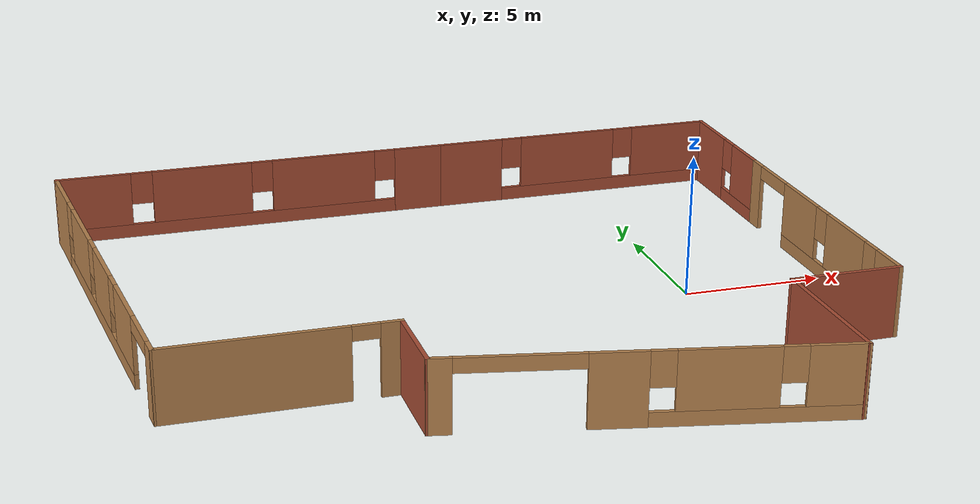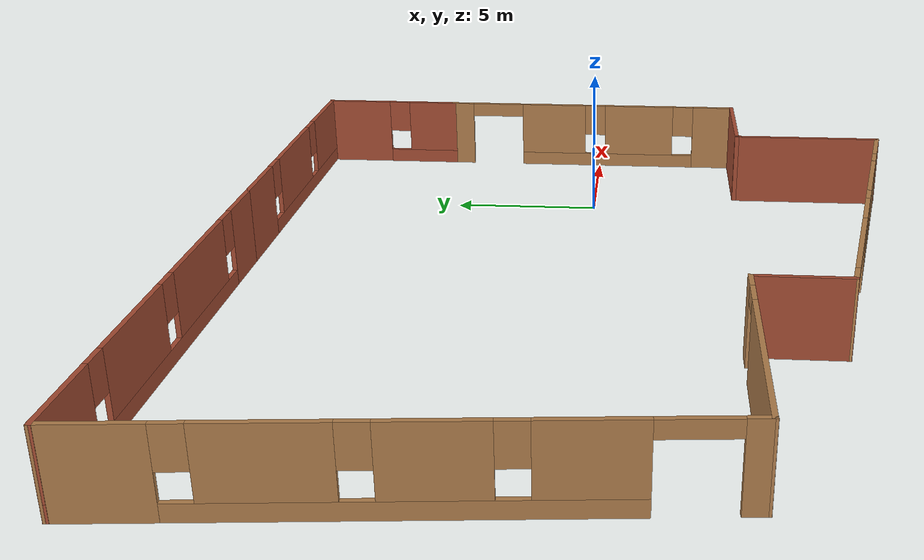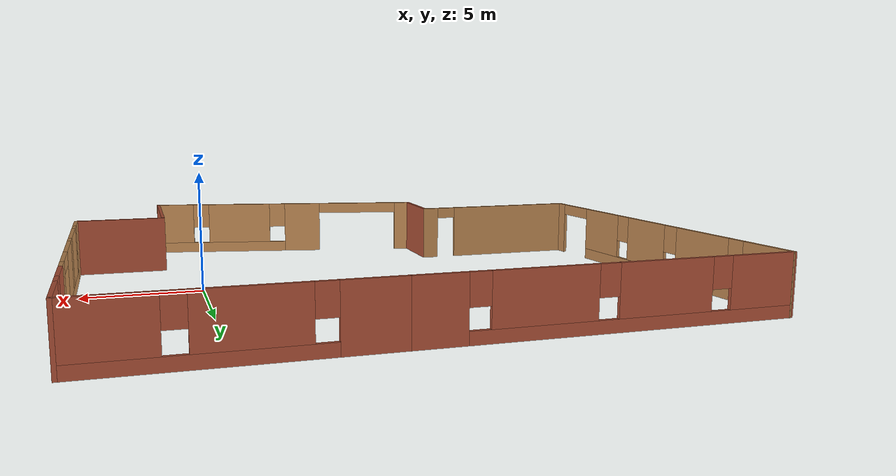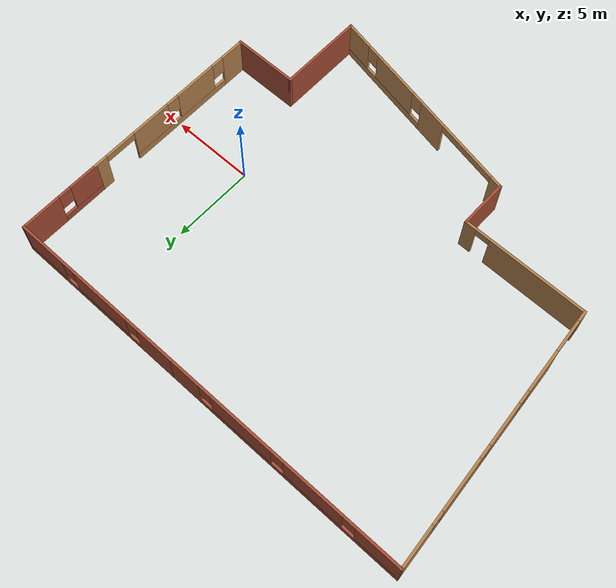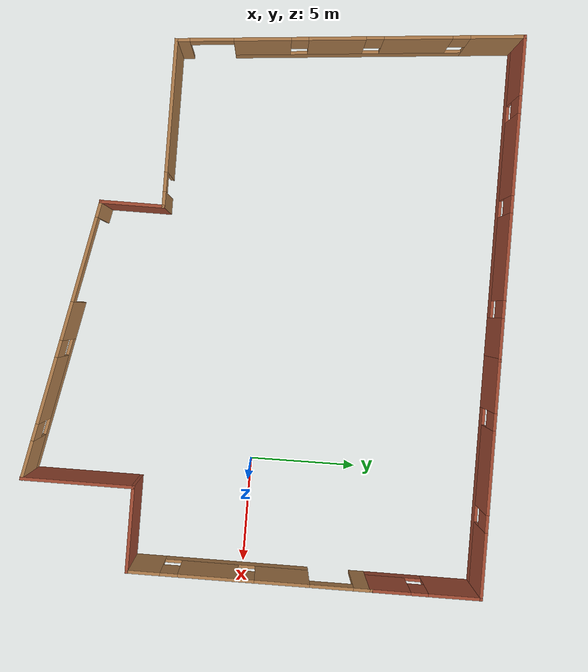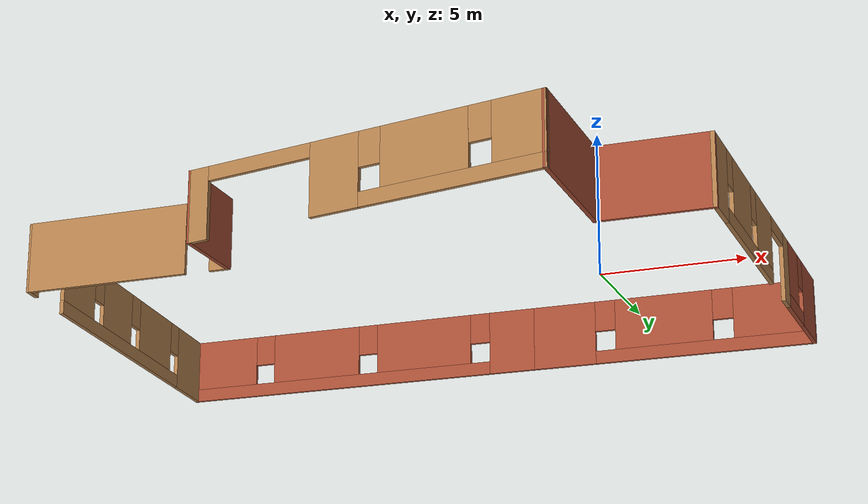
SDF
<?xml version='1.0'?>
<sdf version='1.6'>
  <model name='Carpenter'>
    <pose frame=''>-7.67914 0.329418 0 0 -0 0</pose>
    <link name='Wall_197'>
      <collision name='Wall_197_Collision'>
        <geometry>
          <box>
            <size>5.25 0.15 2.5</size>
          </box>
        </geometry>
        <pose frame=''>0 0 1.25 0 -0 0</pose>
      </collision>
      <visual name='Wall_197_Visual'>
        <pose frame=''>0 0 1.25 0 -0 0</pose>
        <geometry>
          <box>
            <size>5.25 0.15 2.5</size>
          </box>
        </geometry>
        <material>
          <script>
            <uri>file://media/materials/scripts/gazebo.material</uri>
            <name>Gazebo/Bricks</name>
          </script>
          <ambient>0 0 1 1</ambient>
        </material>
        <meta>
          <layer>0</layer>
        </meta>
      </visual>
      <pose frame=''>9.00312 -8.09628 0 0 -0 1.5708</pose>
    </link>
    <link name='Wall_198'>
      <collision name='Wall_198_Collision'>
        <geometry>
          <box>
            <size>4 0.15 2.5</size>
          </box>
        </geometry>
        <pose frame=''>0 0 1.25 0 -0 0</pose>
      </collision>
      <visual name='Wall_198_Visual'>
        <pose frame=''>0 0 1.25 0 -0 0</pose>
        <geometry>
          <box>
            <size>4 0.15 2.5</size>
          </box>
        </geometry>
        <material>
          <script>
            <uri>file://media/materials/scripts/gazebo.material</uri>
            <name>Gazebo/Bricks</name>
          </script>
          <ambient>0 0 1 1</ambient>
        </material>
        <meta>
          <layer>0</layer>
        </meta>
      </visual>
      <pose frame=''>10.9281 -5.54628 0 0 -0 0</pose>
    </link>
    <link name='Wall_199'>
      <pose frame=''>12.8531 0.039149 0 0 -0 1.57079</pose>
      <visual name='Wall_199_Visual_0'>
        <pose frame=''>-4.86276 0 1.25 0 -0 0</pose>
        <geometry>
          <box>
            <size>1.59584 0.15 2.5</size>
          </box>
        </geometry>
        <material>
          <script>
            <uri>file://media/materials/scripts/gazebo.material</uri>
            <name>Gazebo/Wood</name>
          </script>
          <ambient>0.333333 1 0.498039 1</ambient>
        </material>
        <meta>
          <layer>0</layer>
        </meta>
      </visual>
      <collision name='Wall_199_Collision_0'>
        <geometry>
          <box>
            <size>1.59584 0.15 2.5</size>
          </box>
        </geometry>
        <pose frame=''>-4.86276 0 1.25 0 -0 0</pose>
      </collision>
      <visual name='Wall_199_Visual_1'>
        <pose frame=''>5.22009 0 1.25 0 -0 0</pose>
        <geometry>
          <box>
            <size>0.881164 0.15 2.5</size>
          </box>
        </geometry>
        <material>
          <script>
            <uri>file://media/materials/scripts/gazebo.material</uri>
            <name>Gazebo/Wood</name>
          </script>
          <ambient>0.333333 1 0.498039 1</ambient>
        </material>
        <meta>
          <layer>0</layer>
        </meta>
      </visual>
      <collision name='Wall_199_Collision_1'>
        <geometry>
          <box>
            <size>0.881164 0.15 2.5</size>
          </box>
        </geometry>
        <pose frame=''>5.22009 0 1.25 0 -0 0</pose>
      </collision>
      <visual name='Wall_199_Visual_2'>
        <pose frame=''>-0.642663 0 0.25 0 -0 0</pose>
        <geometry>
          <box>
            <size>6.84435 0.15 0.5</size>
          </box>
        </geometry>
        <material>
          <script>
            <uri>file://media/materials/scripts/gazebo.material</uri>
            <name>Gazebo/Wood</name>
          </script>
          <ambient>0.333333 1 0.498039 1</ambient>
        </material>
        <meta>
          <layer>0</layer>
        </meta>
      </visual>
      <collision name='Wall_199_Collision_2'>
        <geometry>
          <box>
            <size>6.84435 0.15 0.5</size>
          </box>
        </geometry>
        <pose frame=''>-0.642663 0 0.25 0 -0 0</pose>
      </collision>
      <visual name='Wall_199_Visual_3'>
        <pose frame=''>-1.91112 0 1.5 0 -0 0</pose>
        <geometry>
          <box>
            <size>2.70743 0.15 2</size>
          </box>
        </geometry>
        <material>
          <script>
            <uri>file://media/materials/scripts/gazebo.material</uri>
            <name>Gazebo/Wood</name>
          </script>
          <ambient>0.333333 1 0.498039 1</ambient>
        </material>
        <meta>
          <layer>0</layer>
        </meta>
      </visual>
      <collision name='Wall_199_Collision_3'>
        <geometry>
          <box>
            <size>2.70743 0.15 2</size>
          </box>
        </geometry>
        <pose frame=''>-1.91112 0 1.5 0 -0 0</pose>
      </collision>
      <visual name='Wall_199_Visual_4'>
        <pose frame=''>1.51105 0 1.5 0 -0 0</pose>
        <geometry>
          <box>
            <size>2.53692 0.15 2</size>
          </box>
        </geometry>
        <material>
          <script>
            <uri>file://media/materials/scripts/gazebo.material</uri>
            <name>Gazebo/Wood</name>
          </script>
          <ambient>0.333333 1 0.498039 1</ambient>
        </material>
        <meta>
          <layer>0</layer>
        </meta>
      </visual>
      <collision name='Wall_199_Collision_4'>
        <geometry>
          <box>
            <size>2.53692 0.15 2</size>
          </box>
        </geometry>
        <pose frame=''>1.51105 0 1.5 0 -0 0</pose>
      </collision>
      <visual name='Wall_199_Visual_5'>
        <pose frame=''>-3.66484 0 1.9 0 -0 0</pose>
        <geometry>
          <box>
            <size>0.8 0.15 1.2</size>
          </box>
        </geometry>
        <material>
          <script>
            <uri>file://media/materials/scripts/gazebo.material</uri>
            <name>Gazebo/Wood</name>
          </script>
          <ambient>0.333333 1 0.498039 1</ambient>
        </material>
        <meta>
          <layer>0</layer>
        </meta>
      </visual>
      <collision name='Wall_199_Collision_5'>
        <geometry>
          <box>
            <size>0.8 0.15 1.2</size>
          </box>
        </geometry>
        <pose frame=''>-3.66484 0 1.9 0 -0 0</pose>
      </collision>
      <visual name='Wall_199_Visual_6'>
        <pose frame=''>-0.157404 0 1.9 0 -0 0</pose>
        <geometry>
          <box>
            <size>0.8 0.15 1.2</size>
          </box>
        </geometry>
        <material>
          <script>
            <uri>file://media/materials/scripts/gazebo.material</uri>
            <name>Gazebo/Wood</name>
          </script>
          <ambient>0.333333 1 0.498039 1</ambient>
        </material>
        <meta>
          <layer>0</layer>
        </meta>
      </visual>
      <collision name='Wall_199_Collision_6'>
        <geometry>
          <box>
            <size>0.8 0.15 1.2</size>
          </box>
        </geometry>
        <pose frame=''>-0.157404 0 1.9 0 -0 0</pose>
      </collision>
      <visual name='Wall_199_Visual_7'>
        <pose frame=''>3.77951 0 2.25 0 -0 0</pose>
        <geometry>
          <box>
            <size>2 0.15 0.5</size>
          </box>
        </geometry>
        <material>
          <script>
            <uri>file://media/materials/scripts/gazebo.material</uri>
            <name>Gazebo/Wood</name>
          </script>
          <ambient>0.333333 1 0.498039 1</ambient>
        </material>
        <meta>
          <layer>0</layer>
        </meta>
      </visual>
      <collision name='Wall_199_Collision_7'>
        <geometry>
          <box>
            <size>2 0.15 0.5</size>
          </box>
        </geometry>
        <pose frame=''>3.77951 0 2.25 0 -0 0</pose>
      </collision>
    </link>
    <link name='Wall_202'>
      <pose frame=''>-5.45743 10.6537 0 0 0 -3.14158</pose>
      <visual name='Wall_202_Visual_0'>
        <pose frame=''>-6.4647 0 1.25 0 -0 0</pose>
        <geometry>
          <box>
            <size>1.99945 0.15 2.5</size>
          </box>
        </geometry>
        <material>
          <script>
            <uri>file://media/materials/scripts/gazebo.material</uri>
            <name>Gazebo/Bricks</name>
          </script>
          <ambient>0 0 1 1</ambient>
        </material>
        <meta>
          <layer>0</layer>
        </meta>
      </visual>
      <collision name='Wall_202_Collision_0'>
        <geometry>
          <box>
            <size>1.99945 0.15 2.5</size>
          </box>
        </geometry>
        <pose frame=''>-6.4647 0 1.25 0 -0 0</pose>
      </collision>
      <visual name='Wall_202_Visual_1'>
        <pose frame=''>0.999728 0 0.25 0 -0 0</pose>
        <geometry>
          <box>
            <size>12.9294 0.15 0.5</size>
          </box>
        </geometry>
        <material>
          <script>
            <uri>file://media/materials/scripts/gazebo.material</uri>
            <name>Gazebo/Bricks</name>
          </script>
          <ambient>0 0 1 1</ambient>
        </material>
        <meta>
          <layer>0</layer>
        </meta>
      </visual>
      <collision name='Wall_202_Collision_1'>
        <geometry>
          <box>
            <size>12.9294 0.15 0.5</size>
          </box>
        </geometry>
        <pose frame=''>0.999728 0 0.25 0 -0 0</pose>
      </collision>
      <visual name='Wall_202_Visual_2'>
        <pose frame=''>-2.66446 0 1.5 0 -0 0</pose>
        <geometry>
          <box>
            <size>4.00102 0.15 2</size>
          </box>
        </geometry>
        <material>
          <script>
            <uri>file://media/materials/scripts/gazebo.material</uri>
            <name>Gazebo/Bricks</name>
          </script>
          <ambient>0 0 1 1</ambient>
        </material>
        <meta>
          <layer>0</layer>
        </meta>
      </visual>
      <collision name='Wall_202_Collision_2'>
        <geometry>
          <box>
            <size>4.00102 0.15 2</size>
          </box>
        </geometry>
        <pose frame=''>-2.66446 0 1.5 0 -0 0</pose>
      </collision>
      <visual name='Wall_202_Visual_3'>
        <pose frame=''>2.01209 0 1.5 0 -0 0</pose>
        <geometry>
          <box>
            <size>3.75208 0.15 2</size>
          </box>
        </geometry>
        <material>
          <script>
            <uri>file://media/materials/scripts/gazebo.material</uri>
            <name>Gazebo/Bricks</name>
          </script>
          <ambient>0 0 1 1</ambient>
        </material>
        <meta>
          <layer>0</layer>
        </meta>
      </visual>
      <collision name='Wall_202_Collision_3'>
        <geometry>
          <box>
            <size>3.75208 0.15 2</size>
          </box>
        </geometry>
        <pose frame=''>2.01209 0 1.5 0 -0 0</pose>
      </collision>
      <visual name='Wall_202_Visual_4'>
        <pose frame=''>6.07628 0 1.5 0 -0 0</pose>
        <geometry>
          <box>
            <size>2.7763 0.15 2</size>
          </box>
        </geometry>
        <material>
          <script>
            <uri>file://media/materials/scripts/gazebo.material</uri>
            <name>Gazebo/Bricks</name>
          </script>
          <ambient>0 0 1 1</ambient>
        </material>
        <meta>
          <layer>0</layer>
        </meta>
      </visual>
      <collision name='Wall_202_Collision_4'>
        <geometry>
          <box>
            <size>2.7763 0.15 2</size>
          </box>
        </geometry>
        <pose frame=''>6.07628 0 1.5 0 -0 0</pose>
      </collision>
      <visual name='Wall_202_Visual_5'>
        <pose frame=''>-5.06497 0 1.9 0 -0 0</pose>
        <geometry>
          <box>
            <size>0.8 0.15 1.2</size>
          </box>
        </geometry>
        <material>
          <script>
            <uri>file://media/materials/scripts/gazebo.material</uri>
            <name>Gazebo/Bricks</name>
          </script>
          <ambient>0 0 1 1</ambient>
        </material>
        <meta>
          <layer>0</layer>
        </meta>
      </visual>
      <collision name='Wall_202_Collision_5'>
        <geometry>
          <box>
            <size>0.8 0.15 1.2</size>
          </box>
        </geometry>
        <pose frame=''>-5.06497 0 1.9 0 -0 0</pose>
      </collision>
      <visual name='Wall_202_Visual_6'>
        <pose frame=''>-0.263949 0 1.9 0 -0 0</pose>
        <geometry>
          <box>
            <size>0.8 0.15 1.2</size>
          </box>
        </geometry>
        <material>
          <script>
            <uri>file://media/materials/scripts/gazebo.material</uri>
            <name>Gazebo/Bricks</name>
          </script>
          <ambient>0 0 1 1</ambient>
        </material>
        <meta>
          <layer>0</layer>
        </meta>
      </visual>
      <collision name='Wall_202_Collision_6'>
        <geometry>
          <box>
            <size>0.8 0.15 1.2</size>
          </box>
        </geometry>
        <pose frame=''>-0.263949 0 1.9 0 -0 0</pose>
      </collision>
      <visual name='Wall_202_Visual_7'>
        <pose frame=''>4.28813 0 1.9 0 -0 0</pose>
        <geometry>
          <box>
            <size>0.8 0.15 1.2</size>
          </box>
        </geometry>
        <material>
          <script>
            <uri>file://media/materials/scripts/gazebo.material</uri>
            <name>Gazebo/Bricks</name>
          </script>
          <ambient>0 0 1 1</ambient>
        </material>
        <meta>
          <layer>0</layer>
        </meta>
      </visual>
      <collision name='Wall_202_Collision_7'>
        <geometry>
          <box>
            <size>0.8 0.15 1.2</size>
          </box>
        </geometry>
        <pose frame=''>4.28813 0 1.9 0 -0 0</pose>
      </collision>
    </link>
    <link name='Wall_209'>
      <pose frame=''>-7.65272 -5.16725 0 0 -0 4.4e-05</pose>
      <visual name='Wall_209_Visual_0'>
        <pose frame=''>-0.826191 0 1.25 0 -0 0</pose>
        <geometry>
          <box>
            <size>6.09762 0.15 2.5</size>
          </box>
        </geometry>
        <material>
          <script>
            <uri>file://media/materials/scripts/gazebo.material</uri>
            <name>Gazebo/Wood</name>
          </script>
          <ambient>0.333333 1 0.498039 1</ambient>
        </material>
        <meta>
          <layer>0</layer>
        </meta>
      </visual>
      <collision name='Wall_209_Collision_0'>
        <geometry>
          <box>
            <size>6.09762 0.15 2.5</size>
          </box>
        </geometry>
        <pose frame=''>-0.826191 0 1.25 0 -0 0</pose>
      </collision>
      <visual name='Wall_209_Visual_1'>
        <pose frame=''>3.49881 0 1.25 0 -0 0</pose>
        <geometry>
          <box>
            <size>0.752382 0.15 2.5</size>
          </box>
        </geometry>
        <material>
          <script>
            <uri>file://media/materials/scripts/gazebo.material</uri>
            <name>Gazebo/Wood</name>
          </script>
          <ambient>0.333333 1 0.498039 1</ambient>
        </material>
        <meta>
          <layer>0</layer>
        </meta>
      </visual>
      <collision name='Wall_209_Collision_1'>
        <geometry>
          <box>
            <size>0.752382 0.15 2.5</size>
          </box>
        </geometry>
        <pose frame=''>3.49881 0 1.25 0 -0 0</pose>
      </collision>
      <visual name='Wall_209_Visual_2'>
        <pose frame=''>2.67262 0 2.25 0 -0 0</pose>
        <geometry>
          <box>
            <size>0.9 0.15 0.5</size>
          </box>
        </geometry>
        <material>
          <script>
            <uri>file://media/materials/scripts/gazebo.material</uri>
            <name>Gazebo/Wood</name>
          </script>
          <ambient>0.333333 1 0.498039 1</ambient>
        </material>
        <meta>
          <layer>0</layer>
        </meta>
      </visual>
      <collision name='Wall_209_Collision_2'>
        <geometry>
          <box>
            <size>0.9 0.15 0.5</size>
          </box>
        </geometry>
        <pose frame=''>2.67262 0 2.25 0 -0 0</pose>
      </collision>
    </link>
    <link name='Wall_210'>
      <collision name='Wall_210_Collision'>
        <geometry>
          <box>
            <size>3 0.15 2.5</size>
          </box>
        </geometry>
        <pose frame=''>0 0 1.25 0 -0 0</pose>
      </collision>
      <visual name='Wall_210_Visual'>
        <pose frame=''>0 0 1.25 0 -0 0</pose>
        <geometry>
          <box>
            <size>3 0.15 2.5</size>
          </box>
        </geometry>
        <material>
          <script>
            <uri>file://media/materials/scripts/gazebo.material</uri>
            <name>Gazebo/Bricks</name>
          </script>
          <ambient>0 0 1 1</ambient>
        </material>
        <meta>
          <layer>0</layer>
        </meta>
      </visual>
      <pose frame=''>-3.85259 -6.59209 0 0 0 -1.5708</pose>
    </link>
    <link name='Wall_211'>
      <pose frame=''>2.57526 -9.33169 0 0 0 -0.201734</pose>
      <visual name='Wall_211_Visual_0'>
        <pose frame=''>-6.22978 0 1.25 0 -0 0</pose>
        <geometry>
          <box>
            <size>0.812241 0.15 2.5</size>
          </box>
        </geometry>
        <material>
          <script>
            <uri>file://media/materials/scripts/gazebo.material</uri>
            <name>Gazebo/Wood</name>
          </script>
          <ambient>0.333333 1 0.498039 1</ambient>
        </material>
        <meta>
          <layer>0</layer>
        </meta>
      </visual>
      <collision name='Wall_211_Collision_0'>
        <geometry>
          <box>
            <size>0.812241 0.15 2.5</size>
          </box>
        </geometry>
        <pose frame=''>-6.22978 0 1.25 0 -0 0</pose>
      </collision>
      <visual name='Wall_211_Visual_1'>
        <pose frame=''>-0.90703 0 1.25 0 -0 0</pose>
        <geometry>
          <box>
            <size>1.83327 0.15 2.5</size>
          </box>
        </geometry>
        <material>
          <script>
            <uri>file://media/materials/scripts/gazebo.material</uri>
            <name>Gazebo/Wood</name>
          </script>
          <ambient>0.333333 1 0.498039 1</ambient>
        </material>
        <meta>
          <layer>0</layer>
        </meta>
      </visual>
      <collision name='Wall_211_Collision_1'>
        <geometry>
          <box>
            <size>1.83327 0.15 2.5</size>
          </box>
        </geometry>
        <pose frame=''>-0.90703 0 1.25 0 -0 0</pose>
      </collision>
      <visual name='Wall_211_Visual_2'>
        <pose frame=''>3.32275 0 0.25 0 -0 0</pose>
        <geometry>
          <box>
            <size>6.6263 0.15 0.5</size>
          </box>
        </geometry>
        <material>
          <script>
            <uri>file://media/materials/scripts/gazebo.material</uri>
            <name>Gazebo/Wood</name>
          </script>
          <ambient>0.333333 1 0.498039 1</ambient>
        </material>
        <meta>
          <layer>0</layer>
        </meta>
      </visual>
      <collision name='Wall_211_Collision_2'>
        <geometry>
          <box>
            <size>6.6263 0.15 0.5</size>
          </box>
        </geometry>
        <pose frame=''>3.32275 0 0.25 0 -0 0</pose>
      </collision>
      <visual name='Wall_211_Visual_3'>
        <pose frame=''>2.39004 0 1.5 0 -0 0</pose>
        <geometry>
          <box>
            <size>3.16087 0.15 2</size>
          </box>
        </geometry>
        <material>
          <script>
            <uri>file://media/materials/scripts/gazebo.material</uri>
            <name>Gazebo/Wood</name>
          </script>
          <ambient>0.333333 1 0.498039 1</ambient>
        </material>
        <meta>
          <layer>0</layer>
        </meta>
      </visual>
      <collision name='Wall_211_Collision_3'>
        <geometry>
          <box>
            <size>3.16087 0.15 2</size>
          </box>
        </geometry>
        <pose frame=''>2.39004 0 1.5 0 -0 0</pose>
      </collision>
      <visual name='Wall_211_Visual_4'>
        <pose frame=''>5.70319 0 1.5 0 -0 0</pose>
        <geometry>
          <box>
            <size>1.86543 0.15 2</size>
          </box>
        </geometry>
        <material>
          <script>
            <uri>file://media/materials/scripts/gazebo.material</uri>
            <name>Gazebo/Wood</name>
          </script>
          <ambient>0.333333 1 0.498039 1</ambient>
        </material>
        <meta>
          <layer>0</layer>
        </meta>
      </visual>
      <collision name='Wall_211_Collision_4'>
        <geometry>
          <box>
            <size>1.86543 0.15 2</size>
          </box>
        </geometry>
        <pose frame=''>5.70319 0 1.5 0 -0 0</pose>
      </collision>
      <visual name='Wall_211_Visual_5'>
        <pose frame=''>0.409605 0 1.9 0 -0 0</pose>
        <geometry>
          <box>
            <size>0.8 0.15 1.2</size>
          </box>
        </geometry>
        <material>
          <script>
            <uri>file://media/materials/scripts/gazebo.material</uri>
            <name>Gazebo/Wood</name>
          </script>
          <ambient>0.333333 1 0.498039 1</ambient>
        </material>
        <meta>
          <layer>0</layer>
        </meta>
      </visual>
      <collision name='Wall_211_Collision_5'>
        <geometry>
          <box>
            <size>0.8 0.15 1.2</size>
          </box>
        </geometry>
        <pose frame=''>0.409605 0 1.9 0 -0 0</pose>
      </collision>
      <visual name='Wall_211_Visual_6'>
        <pose frame=''>4.37048 0 1.9 0 -0 0</pose>
        <geometry>
          <box>
            <size>0.8 0.15 1.2</size>
          </box>
        </geometry>
        <material>
          <script>
            <uri>file://media/materials/scripts/gazebo.material</uri>
            <name>Gazebo/Wood</name>
          </script>
          <ambient>0.333333 1 0.498039 1</ambient>
        </material>
        <meta>
          <layer>0</layer>
        </meta>
      </visual>
      <collision name='Wall_211_Collision_6'>
        <geometry>
          <box>
            <size>0.8 0.15 1.2</size>
          </box>
        </geometry>
        <pose frame=''>4.37048 0 1.9 0 -0 0</pose>
      </collision>
      <visual name='Wall_211_Visual_7'>
        <pose frame=''>-3.82366 0 2.25 0 -0 0</pose>
        <geometry>
          <box>
            <size>4 0.15 0.5</size>
          </box>
        </geometry>
        <material>
          <script>
            <uri>file://media/materials/scripts/gazebo.material</uri>
            <name>Gazebo/Wood</name>
          </script>
          <ambient>0.333333 1 0.498039 1</ambient>
        </material>
        <meta>
          <layer>0</layer>
        </meta>
      </visual>
      <collision name='Wall_211_Collision_7'>
        <geometry>
          <box>
            <size>4 0.15 0.5</size>
          </box>
        </geometry>
        <pose frame=''>-3.82366 0 2.25 0 -0 0</pose>
      </collision>
    </link>
    <link name='Wall_213'>
      <pose frame=''>-12.1499 2.74308 0 0 0 -1.48291</pose>
      <visual name='Wall_213_Visual_0'>
        <pose frame=''>-6.73662 0 1.25 0 -0 0</pose>
        <geometry>
          <box>
            <size>2.55889 0.15 2.5</size>
          </box>
        </geometry>
        <material>
          <script>
            <uri>file://media/materials/scripts/gazebo.material</uri>
            <name>Gazebo/Wood</name>
          </script>
          <ambient>0.333333 1 0.498039 1</ambient>
        </material>
        <meta>
          <layer>0</layer>
        </meta>
      </visual>
      <collision name='Wall_213_Collision_0'>
        <geometry>
          <box>
            <size>2.55889 0.15 2.5</size>
          </box>
        </geometry>
        <pose frame=''>-6.73662 0 1.25 0 -0 0</pose>
      </collision>
      <visual name='Wall_213_Visual_1'>
        <pose frame=''>7.67224 0 1.25 0 -0 0</pose>
        <geometry>
          <box>
            <size>0.687644 0.15 2.5</size>
          </box>
        </geometry>
        <material>
          <script>
            <uri>file://media/materials/scripts/gazebo.material</uri>
            <name>Gazebo/Wood</name>
          </script>
          <ambient>0.333333 1 0.498039 1</ambient>
        </material>
        <meta>
          <layer>0</layer>
        </meta>
      </visual>
      <collision name='Wall_213_Collision_1'>
        <geometry>
          <box>
            <size>0.687644 0.15 2.5</size>
          </box>
        </geometry>
        <pose frame=''>7.67224 0 1.25 0 -0 0</pose>
      </collision>
      <visual name='Wall_213_Visual_2'>
        <pose frame=''>-0.064379 0 0.25 0 -0 0</pose>
        <geometry>
          <box>
            <size>10.7856 0.15 0.5</size>
          </box>
        </geometry>
        <material>
          <script>
            <uri>file://media/materials/scripts/gazebo.material</uri>
            <name>Gazebo/Wood</name>
          </script>
          <ambient>0.333333 1 0.498039 1</ambient>
        </material>
        <meta>
          <layer>0</layer>
        </meta>
      </visual>
      <collision name='Wall_213_Collision_2'>
        <geometry>
          <box>
            <size>10.7856 0.15 0.5</size>
          </box>
        </geometry>
        <pose frame=''>-0.064379 0 0.25 0 -0 0</pose>
      </collision>
      <visual name='Wall_213_Visual_3'>
        <pose frame=''>-3.0848 0 1.5 0 -0 0</pose>
        <geometry>
          <box>
            <size>3.14476 0.15 2</size>
          </box>
        </geometry>
        <material>
          <script>
            <uri>file://media/materials/scripts/gazebo.material</uri>
            <name>Gazebo/Wood</name>
          </script>
          <ambient>0.333333 1 0.498039 1</ambient>
        </material>
        <meta>
          <layer>0</layer>
        </meta>
      </visual>
      <collision name='Wall_213_Collision_3'>
        <geometry>
          <box>
            <size>3.14476 0.15 2</size>
          </box>
        </geometry>
        <pose frame=''>-3.0848 0 1.5 0 -0 0</pose>
      </collision>
      <visual name='Wall_213_Visual_4'>
        <pose frame=''>0.595278 0 1.5 0 -0 0</pose>
        <geometry>
          <box>
            <size>2.6154 0.15 2</size>
          </box>
        </geometry>
        <material>
          <script>
            <uri>file://media/materials/scripts/gazebo.material</uri>
            <name>Gazebo/Wood</name>
          </script>
          <ambient>0.333333 1 0.498039 1</ambient>
        </material>
        <meta>
          <layer>0</layer>
        </meta>
      </visual>
      <collision name='Wall_213_Collision_4'>
        <geometry>
          <box>
            <size>2.6154 0.15 2</size>
          </box>
        </geometry>
        <pose frame=''>0.595278 0 1.5 0 -0 0</pose>
      </collision>
      <visual name='Wall_213_Visual_5'>
        <pose frame=''>4.0157 0 1.5 0 -0 0</pose>
        <geometry>
          <box>
            <size>2.62544 0.15 2</size>
          </box>
        </geometry>
        <material>
          <script>
            <uri>file://media/materials/scripts/gazebo.material</uri>
            <name>Gazebo/Wood</name>
          </script>
          <ambient>0.333333 1 0.498039 1</ambient>
        </material>
        <meta>
          <layer>0</layer>
        </meta>
      </visual>
      <collision name='Wall_213_Collision_5'>
        <geometry>
          <box>
            <size>2.62544 0.15 2</size>
          </box>
        </geometry>
        <pose frame=''>4.0157 0 1.5 0 -0 0</pose>
      </collision>
      <visual name='Wall_213_Visual_6'>
        <pose frame=''>-5.05718 0 1.9 0 -0 0</pose>
        <geometry>
          <box>
            <size>0.8 0.15 1.2</size>
          </box>
        </geometry>
        <material>
          <script>
            <uri>file://media/materials/scripts/gazebo.material</uri>
            <name>Gazebo/Wood</name>
          </script>
          <ambient>0.333333 1 0.498039 1</ambient>
        </material>
        <meta>
          <layer>0</layer>
        </meta>
      </visual>
      <collision name='Wall_213_Collision_6'>
        <geometry>
          <box>
            <size>0.8 0.15 1.2</size>
          </box>
        </geometry>
        <pose frame=''>-5.05718 0 1.9 0 -0 0</pose>
      </collision>
      <visual name='Wall_213_Visual_7'>
        <pose frame=''>-1.11242 0 1.9 0 -0 0</pose>
        <geometry>
          <box>
            <size>0.8 0.15 1.2</size>
          </box>
        </geometry>
        <material>
          <script>
            <uri>file://media/materials/scripts/gazebo.material</uri>
            <name>Gazebo/Wood</name>
          </script>
          <ambient>0.333333 1 0.498039 1</ambient>
        </material>
        <meta>
          <layer>0</layer>
        </meta>
      </visual>
      <collision name='Wall_213_Collision_7'>
        <geometry>
          <box>
            <size>0.8 0.15 1.2</size>
          </box>
        </geometry>
        <pose frame=''>-1.11242 0 1.9 0 -0 0</pose>
      </collision>
      <visual name='Wall_213_Visual_8'>
        <pose frame=''>2.30298 0 1.9 0 -0 0</pose>
        <geometry>
          <box>
            <size>0.8 0.15 1.2</size>
          </box>
        </geometry>
        <material>
          <script>
            <uri>file://media/materials/scripts/gazebo.material</uri>
            <name>Gazebo/Wood</name>
          </script>
          <ambient>0.333333 1 0.498039 1</ambient>
        </material>
        <meta>
          <layer>0</layer>
        </meta>
      </visual>
      <collision name='Wall_213_Collision_8'>
        <geometry>
          <box>
            <size>0.8 0.15 1.2</size>
          </box>
        </geometry>
        <pose frame=''>2.30298 0 1.9 0 -0 0</pose>
      </collision>
      <visual name='Wall_213_Visual_9'>
        <pose frame=''>6.32842 0 2.25 0 -0 0</pose>
        <geometry>
          <box>
            <size>2 0.15 0.5</size>
          </box>
        </geometry>
        <material>
          <script>
            <uri>file://media/materials/scripts/gazebo.material</uri>
            <name>Gazebo/Wood</name>
          </script>
          <ambient>0.333333 1 0.498039 1</ambient>
        </material>
        <meta>
          <layer>0</layer>
        </meta>
      </visual>
      <collision name='Wall_213_Collision_9'>
        <geometry>
          <box>
            <size>2 0.15 0.5</size>
          </box>
        </geometry>
        <pose frame=''>6.32842 0 2.25 0 -0 0</pose>
      </collision>
    </link>
    <link name='Wall_215'>
      <pose frame=''>7.39257 10.6537 0 0 0 -1.2e-05</pose>
      <visual name='Wall_215_Visual_0'>
        <pose frame=''>-4.28197 0 1.25 0 -0 0</pose>
        <geometry>
          <box>
            <size>2.50718 0.15 2.5</size>
          </box>
        </geometry>
        <material>
          <script>
            <uri>file://media/materials/scripts/gazebo.material</uri>
            <name>Gazebo/Bricks</name>
          </script>
          <ambient>0 0 1 1</ambient>
        </material>
        <meta>
          <layer>0</layer>
        </meta>
      </visual>
      <collision name='Wall_215_Collision_0'>
        <geometry>
          <box>
            <size>2.50718 0.15 2.5</size>
          </box>
        </geometry>
        <pose frame=''>-4.28197 0 1.25 0 -0 0</pose>
      </collision>
      <visual name='Wall_215_Visual_1'>
        <pose frame=''>1.25359 0 0.25 0 -0 0</pose>
        <geometry>
          <box>
            <size>8.56395 0.15 0.5</size>
          </box>
        </geometry>
        <material>
          <script>
            <uri>file://media/materials/scripts/gazebo.material</uri>
            <name>Gazebo/Bricks</name>
          </script>
          <ambient>0 0 1 1</ambient>
        </material>
        <meta>
          <layer>0</layer>
        </meta>
      </visual>
      <collision name='Wall_215_Collision_1'>
        <geometry>
          <box>
            <size>8.56395 0.15 0.5</size>
          </box>
        </geometry>
        <pose frame=''>1.25359 0 0.25 0 -0 0</pose>
      </collision>
      <visual name='Wall_215_Visual_2'>
        <pose frame=''>-0.298999 0 1.5 0 -0 0</pose>
        <geometry>
          <box>
            <size>3.85877 0.15 2</size>
          </box>
        </geometry>
        <material>
          <script>
            <uri>file://media/materials/scripts/gazebo.material</uri>
            <name>Gazebo/Bricks</name>
          </script>
          <ambient>0 0 1 1</ambient>
        </material>
        <meta>
          <layer>0</layer>
        </meta>
      </visual>
      <collision name='Wall_215_Collision_2'>
        <geometry>
          <box>
            <size>3.85877 0.15 2</size>
          </box>
        </geometry>
        <pose frame=''>-0.298999 0 1.5 0 -0 0</pose>
      </collision>
      <visual name='Wall_215_Visual_3'>
        <pose frame=''>3.98297 0 1.5 0 -0 0</pose>
        <geometry>
          <box>
            <size>3.10518 0.15 2</size>
          </box>
        </geometry>
        <material>
          <script>
            <uri>file://media/materials/scripts/gazebo.material</uri>
            <name>Gazebo/Bricks</name>
          </script>
          <ambient>0 0 1 1</ambient>
        </material>
        <meta>
          <layer>0</layer>
        </meta>
      </visual>
      <collision name='Wall_215_Collision_3'>
        <geometry>
          <box>
            <size>3.10518 0.15 2</size>
          </box>
        </geometry>
        <pose frame=''>3.98297 0 1.5 0 -0 0</pose>
      </collision>
      <visual name='Wall_215_Visual_4'>
        <pose frame=''>-2.62838 0 1.9 0 -0 0</pose>
        <geometry>
          <box>
            <size>0.8 0.15 1.2</size>
          </box>
        </geometry>
        <material>
          <script>
            <uri>file://media/materials/scripts/gazebo.material</uri>
            <name>Gazebo/Bricks</name>
          </script>
          <ambient>0 0 1 1</ambient>
        </material>
        <meta>
          <layer>0</layer>
        </meta>
      </visual>
      <collision name='Wall_215_Collision_4'>
        <geometry>
          <box>
            <size>0.8 0.15 1.2</size>
          </box>
        </geometry>
        <pose frame=''>-2.62838 0 1.9 0 -0 0</pose>
      </collision>
      <visual name='Wall_215_Visual_5'>
        <pose frame=''>2.03038 0 1.9 0 -0 0</pose>
        <geometry>
          <box>
            <size>0.8 0.15 1.2</size>
          </box>
        </geometry>
        <material>
          <script>
            <uri>file://media/materials/scripts/gazebo.material</uri>
            <name>Gazebo/Bricks</name>
          </script>
          <ambient>0 0 1 1</ambient>
        </material>
        <meta>
          <layer>0</layer>
        </meta>
      </visual>
      <collision name='Wall_215_Collision_5'>
        <geometry>
          <box>
            <size>0.8 0.15 1.2</size>
          </box>
        </geometry>
        <pose frame=''>2.03038 0 1.9 0 -0 0</pose>
      </collision>
    </link>
    <link name='Wall_216'>
      <pose frame=''>12.8531 8.13908 0 0 0 -1.5708</pose>
      <visual name='Wall_216_Visual_0'>
        <pose frame=''>-1.34981 0 1.25 0 -0 0</pose>
        <geometry>
          <box>
            <size>2.47976 0.15 2.5</size>
          </box>
        </geometry>
        <material>
          <script>
            <uri>file://media/materials/scripts/gazebo.material</uri>
            <name>Gazebo/Bricks</name>
          </script>
          <ambient>0 0 1 1</ambient>
        </material>
        <meta>
          <layer>0</layer>
        </meta>
      </visual>
      <collision name='Wall_216_Collision_0'>
        <geometry>
          <box>
            <size>2.47976 0.15 2.5</size>
          </box>
        </geometry>
        <pose frame=''>-1.34981 0 1.25 0 -0 0</pose>
      </collision>
      <visual name='Wall_216_Visual_1'>
        <pose frame=''>1.23988 0 0.25 0 -0 0</pose>
        <geometry>
          <box>
            <size>2.69962 0.15 0.5</size>
          </box>
        </geometry>
        <material>
          <script>
            <uri>file://media/materials/scripts/gazebo.material</uri>
            <name>Gazebo/Bricks</name>
          </script>
          <ambient>0 0 1 1</ambient>
        </material>
        <meta>
          <layer>0</layer>
        </meta>
      </visual>
      <collision name='Wall_216_Collision_1'>
        <geometry>
          <box>
            <size>2.69962 0.15 0.5</size>
          </box>
        </geometry>
        <pose frame=''>1.23988 0 0.25 0 -0 0</pose>
      </collision>
      <visual name='Wall_216_Visual_2'>
        <pose frame=''>1.63988 0 1.5 0 -0 0</pose>
        <geometry>
          <box>
            <size>1.89962 0.15 2</size>
          </box>
        </geometry>
        <material>
          <script>
            <uri>file://media/materials/scripts/gazebo.material</uri>
            <name>Gazebo/Bricks</name>
          </script>
          <ambient>0 0 1 1</ambient>
        </material>
        <meta>
          <layer>0</layer>
        </meta>
      </visual>
      <collision name='Wall_216_Collision_2'>
        <geometry>
          <box>
            <size>1.89962 0.15 2</size>
          </box>
        </geometry>
        <pose frame=''>1.63988 0 1.5 0 -0 0</pose>
      </collision>
      <visual name='Wall_216_Visual_3'>
        <pose frame=''>0.290072 0 1.9 0 -0 0</pose>
        <geometry>
          <box>
            <size>0.8 0.15 1.2</size>
          </box>
        </geometry>
        <material>
          <script>
            <uri>file://media/materials/scripts/gazebo.material</uri>
            <name>Gazebo/Bricks</name>
          </script>
          <ambient>0 0 1 1</ambient>
        </material>
        <meta>
          <layer>0</layer>
        </meta>
      </visual>
      <collision name='Wall_216_Collision_3'>
        <geometry>
          <box>
            <size>0.8 0.15 1.2</size>
          </box>
        </geometry>
        <pose frame=''>0.290072 0 1.9 0 -0 0</pose>
      </collision>
    </link>
    <static>1</static>
  </model>
</sdf>
